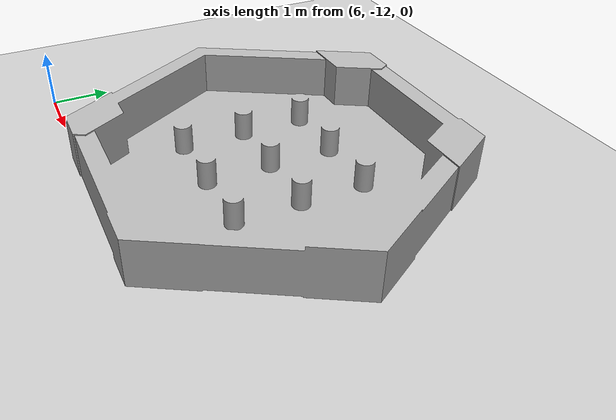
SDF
<?xml version="1.0"?>
<sdf version="1.6">
  <world name="default">

    <include>
      <uri>model://ground_plane</uri>
    </include>

    <include>
      <uri>model://sun</uri>
    </include>

    <scene>
      <shadows>false</shadows>
    </scene>

    <gui fullscreen='0'>
      <camera name='user_camera'>
        <pose frame=''>0.319654 -0.235002 9.29441 0 1.5138 0.009599</pose>
        <view_controller>orbit</view_controller>
        <projection_type>perspective</projection_type>
      </camera>
    </gui>

    <physics type="ode">
      <real_time_update_rate>1000.0</real_time_update_rate>
      <max_step_size>0.001</max_step_size>
      <real_time_factor>1</real_time_factor>
      <ode>
        <solver>
          <type>quick</type>
          <iters>150</iters>
          <precon_iters>0</precon_iters>
          <sor>1.400000</sor>
          <use_dynamic_moi_rescaling>1</use_dynamic_moi_rescaling>
        </solver>
        <constraints>
          <cfm>0.00001</cfm>
          <erp>0.2</erp>
          <contact_max_correcting_vel>2000.000000</contact_max_correcting_vel>
          <contact_surface_layer>0.01000</contact_surface_layer>
        </constraints>
      </ode>
    </physics>

    <model name="turtlebot_env">
      <static>1</static>
      <include>
        <uri>model://turtlebot_env</uri>
      </include>
      <pose>9.699500 -9.198589 -0.044076 0 0 0</pose>
    </model>

    <light name='user_point_light_2' type='point'>
      <pose frame=''>9.5 -9.0 4.0 0 0 0</pose>
      <diffuse>0.2 0.2 0.2 1</diffuse>
      <specular>0.1 0.1 0.1 1</specular>
      <attenuation>
        <range>10</range>
        <constant>0.5</constant>
        <linear>0.01</linear>
        <quadratic>0.001</quadratic>
      </attenuation>
      <cast_shadows>0</cast_shadows>
      <direction>0 0 -1</direction>
    </light>

  </world>
</sdf>

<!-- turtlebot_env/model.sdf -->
<sdf version="1.6">
  <model name="turtlebot_env">
    <pose>0.0 0.0 0.0 0.0 0.0 0.0</pose>
    <static>true</static>

    <link name="bartender_main_link">
      <pose>0.0 0.0 0.05 0.0 0.0 0.0</pose>

      <collision name="collision">
        <pose>0 0 0 0 0 0</pose>
        <geometry>
          <mesh>
            <uri>model://turtlebot_env/meshes/turtlebot_env_col.stl</uri>
          </mesh>
        </geometry>
      </collision>

      <visual name="visual_walls">
        <pose>0 0 0 0 0 0</pose>
        <geometry>
          <mesh>
            <uri>model://turtlebot_env/meshes/turtlebot_env_HD.dae</uri>
          </mesh>
        </geometry>
      </visual>

    </link>

  </model>
</sdf>
